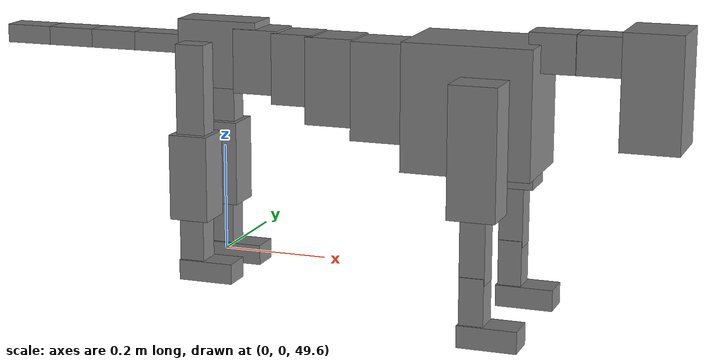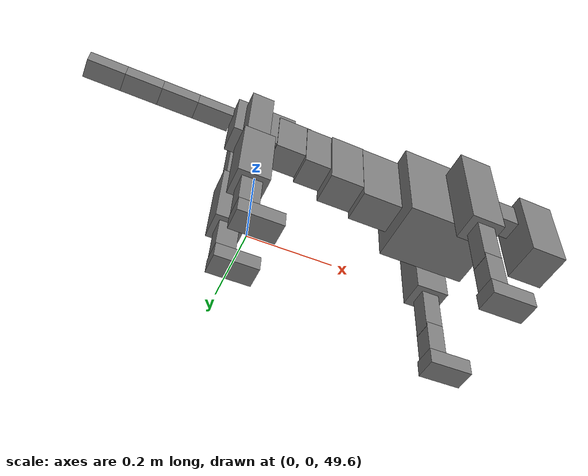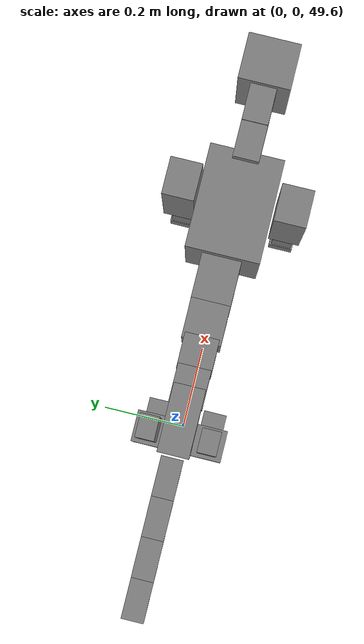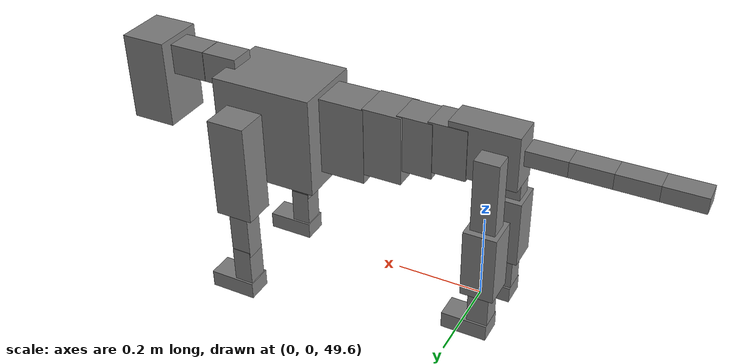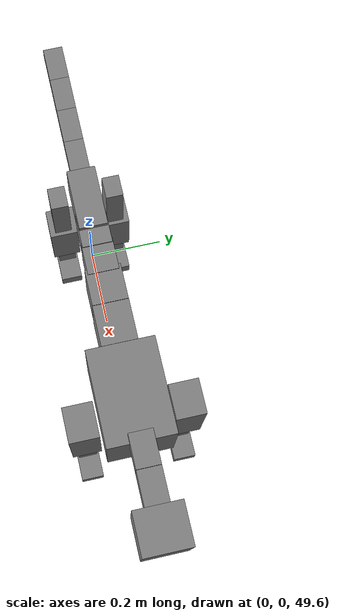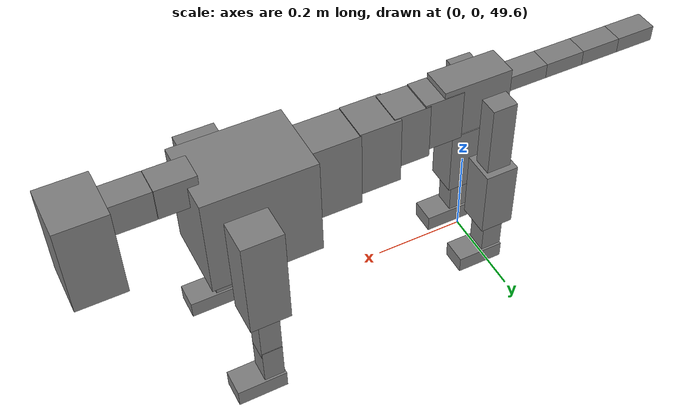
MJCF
<mujoco model="dog">

    <default>
        <joint armature="0.02" stiffness="1" damping="0.2" limited="true"/>
        <geom condim="3" friction="1 0.05 0.05" margin="0.01"/>
        <motor ctrllimited="true" ctrlrange="-1.0 1.0" forcelimited="true" gear="50"/>
    </default>

    <compiler inertiafromgeom="true" angle="radian"/>

    <option timestep="0.016" iterations="50" tolerance="1e-10" solver="Newton" jacobian="dense" cone="pyramidal"/>

    <size nconmax="20000" njmax="60000" nstack="5000000"/>
    <visual>
        <map force="0.1" zfar="30"/>
        <rgba haze="0.15 0.25 0.35 1"/>
        <quality shadowsize="2048"/>
        <global offwidth="800" offheight="800"/>
    </visual>

    <asset>
        <texture type="skybox" builtin="gradient" rgb1="0.3 0.5 0.7" rgb2="0 0 0" width="512" height="512"/>
        <texture name="texplane" type="2d" builtin="checker" rgb1=".2 .3 .4" rgb2=".1 0.15 0.2" width="512" height="512"
                 mark="cross" markrgb=".8 .8 .8"/>
        <texture name="texgeom" type="cube" builtin="flat" mark="cross" width="127" height="1278" rgb1="0.8 0.6 0.4"
                 rgb2="0.8 0.6 0.4" markrgb="1 1 1" random="0.01"/>

        <material name="matplane" reflectance="0.3" texture="texplane" texrepeat="1 1" texuniform="true"/>
        <material name="matgeom" texture="texgeom" texuniform="true" rgba="0.8 0.6 .4 1"/>
    </asset>

    <worldbody>
        <geom name="floor" pos="0 0 0" size="0 0 .25" type="plane" material="matplane" condim="3"/>

        <light directional="false" diffuse=".2 .2 .2" specular="0 0 0" pos="0 0 5" dir="0 0 -1" castshadow="false"/>
        <light mode="targetbodycom" target="torso" directional="false" diffuse=".8 .8 .8" specular="0.3 0.3 0.3"
               pos="0 0 4.0" dir="0 0 -1"/>

        <body name="root" pos="0 0 50">
            <freejoint name="root_1"/>
            <geom type="box" pos="0 0 -0.02" size="0.0774  0.0358  0.063" density="2030"/>

            <body name="spine1" pos="0.054 0 0">
                <joint name="spine1_y" axis="0 1 0" range="0 0.7" limited="true"/>
                <geom type="box" pos="0.02375 0 -0.03" size="0.04375  0.0375  0.05985" density="2030"/>

                <body name="spine2" pos="0.0612 0 0">
                    <joint name="spine2_y" axis="0 1 0" range="-0.15 0.15" limited="true"/>
                    <geom type="box" pos="0.03555  0  -0.04" size="0.04055  0.039  0.06615" density="2030"/>

                    <body name="spine3" pos="0.0730 0 0">
                        <joint name="spine3_y" axis="0 1 0" range="-0.15 0.15" limited="true"/>
                        <geom type="box" pos="0.03555  0  -0.057" size="0.04555  0.0445  0.081" density="2030"/>

                        <body name="spine4" pos="0.0780 0 0">
                            <joint name="spine4_y" axis="0 1 0" range="-0.15 0.15" limited="true"/>
                            <geom type="box" pos="0.05265  0  -0.07" size="0.05265  0.045  0.09135" density="2030"/>

                            <body name="torso" pos="0.1082 0 0">
                                <joint name="torso_y" axis="0 1 0" range="-0.15 0.15" limited="true"/>
                                <geom type="box" pos="0.11925  0  -0.085" size="0.11925  0.085  0.11745"
                                      density="2030"/>

                                <body name="neck1" pos="0.2160  0   0.0180">
                                    <joint name="neck1_y" axis="0 1 0" range="-1.2  -1" limited="true"/>
                                    <geom type="box" pos="0.0423  0  0" size="0.0423  0.03  0.036" density="2325"/>

                                    <body name="neck2" pos="0.0853  0  0">
                                        <joint name="neck2_y" axis="0 1 0" range="0.1  0" limited="true"/>
                                        <geom type="box" pos="0.0423  0  0" size="0.0423  0.03  0.036" density="2325"/>

                                        <body name="head" pos="0.0853  0  0">
                                            <joint name="head_y" axis="0 1 0" range="-0.3  -0.2" limited="true"/>
                                            <geom type="box" pos="0.0531  0  -0.055" size="0.0531  0.06  0.1044"
                                                  density="4030"/>

                                        </body>
                                    </body>
                                </body>

                                <body name="front_shoulder" pos="0.156  0   -0.0480">
                                    <joint name="front_shoulder_y" axis="0 1 0" range="-1 1.5" limited="true"/>
                                    <geom type="box" pos="0 0.13 -0.0927" size="0.0440  0.0376  0.1193" density="1158"/>
                                    <geom type="box" pos="0 -0.13 -0.0927" size="0.0440  0.0376  0.1193"
                                          density="1158"/>

                                    <body name="front_elbow" pos="0  0  -0.1854">
                                        <joint name="front_elbow_y" axis="0 1 0" range="-2 0" limited="true"/>
                                        <geom type="box" pos="0 0.13 -0.0715" size="0.0231  0.0236  0.0715"
                                              density="1081"/>
                                        <geom type="box" pos="0 -0.13 -0.0715" size="0.0231  0.0236  0.0715"
                                              density="1081"/>

                                        <body name="front_wrist" pos="0  0  -0.1430">
                                            <joint name="front_wrist_y" axis="0 1 0" range="-0.2 0" limited="true"/>
                                            <geom type="box" pos="0 0.13 -0.0446" size="0.0225  0.0250  0.0577"
                                                  density="1664"/>
                                            <geom type="box" pos="0 -0.13 -0.0446" size="0.0225  0.0250  0.0577"
                                                  density="1664"/>

                                            <body name="front_finger_end" pos="0  0  -0.0891">
                                                <joint name="front_finger_y" axis="0 1 0" range="-0.4 1"
                                                       limited="true"/>
                                                <geom type="box" pos="0.0299  0.13  -0.0054"
                                                      size="0.0549  0.0299  0.0204" density="1515"/>
                                                <geom type="box" pos="0.0299  -0.13  -0.0054"
                                                      size="0.0549  0.0299  0.0204" density="1515"/>

                                            </body>

                                        </body>
                                    </body>
                                </body>

                            </body>
                        </body>
                    </body>
                </body>
            </body>

            <body name="back_hip" pos="-0.03 0 -0.018">
                <joint name="back_hip_y" axis="0 1 0" range="-1.5 0.3" limited="true"/>
                <geom type="box" pos="0 0.07 -0.0805" size="0.0277  0.0218  0.1033" density="1154"/>
                <geom type="box" pos="0 -0.07 -0.0805" size="0.0277  0.0218  0.1033" density="1154"/>

                <body name="back_knee" pos="0  0  -0.1609">
                    <joint name="back_knee_y" axis="0 1 0" range="0 2.8" limited="true"/>
                    <geom type="box" pos="0 0.07 -0.0647" size="0.0372  0.0366  0.0803" density="1227"/>
                    <geom type="box" pos="0 -0.07 -0.0647" size="0.0372  0.0366  0.0803" density="1227"/>

                    <body name="back_ankle" pos="0  0  -0.1295">
                        <joint name="back_ankle_y" axis="0 1 0" range="-2.2 0" limited="true"/>
                        <geom type="box" pos="0 0.07 -0.0548" size="0.0236  0.0236  0.0661" density="1284"/>
                        <geom type="box" pos="0 -0.07 -0.0548" size="0.0236  0.0236  0.0661" density="1284"/>

                        <body name="back_toe_end" pos="0  0  -0.1096">
                            <joint name="back_toe_y" axis="0 1 0" range="-0.4 1" limited="true"/>
                            <geom type="box" pos="0.0286  0.07  -0.0041" size="0.0524  0.0286  0.0191" density="1515"/>
                            <geom type="box" pos="0.0286  -0.07  -0.0041" size="0.0524  0.0286  0.0191" density="1515"/>

                        </body>
                    </body>
                </body>
            </body>

            <body name="tail1" pos="-0.074 0 -0.006">
                <joint name="tail1_y" axis="0 1 0" range="-0.2 0.2" limited="true"/>
                <geom type="box" pos="-0.0536  0  0" size="0.045  0.025  0.0175" density="1587"/>

                <body name="tail2" pos="-0.09 0 0">
                    <joint name="tail2_y" axis="0 1 0" range="-0.2 0.2" limited="true"/>
                    <geom type="box" pos="-0.0536  0  0" size="0.045  0.025  0.0175" density="1587"/>

                    <body name="tail3" pos="-0.09 0 0">
                        <joint name="tail3_y" axis="0 1 0" range="-0.2 0.2" limited="true"/>
                        <geom type="box" pos="-0.0536  0  0" size="0.045  0.025  0.0175" density="1587"/>

                        <body name="tail4" pos="-0.09 0 0">
                            <joint name="tail4_y" axis="0 1 0" range="-0.2 0.2" limited="true"/>
                            <geom type="box" pos="-0.0536  0  0" size="0.045  0.025  0.0175" density="1587"/>

                        </body>
                    </body>
                </body>
            </body>
        </body>
    </worldbody>

    <actuator>
        <motor joint="spine1_y" forcerange="-150 150     "/>
        <motor joint="spine2_y" forcerange="-150 150     "/>
        <motor joint="spine3_y" forcerange="-150 150     "/>
        <motor joint="spine4_y" forcerange="-150 150     "/>
        <motor joint="torso_y" forcerange="-150 150     "/>
        <motor joint="neck1_y" forcerange="-100 100       "/>
        <motor joint="neck2_y" forcerange="-100 100       "/>
        <motor joint="head_y" forcerange="-150 150       "/>
        <motor joint="front_shoulder_y" forcerange="-189.92 160.69"/>
        <motor joint="front_elbow_y" forcerange="-149.56 122.38"/>
        <motor joint="front_wrist_y" forcerange="-110.28 90.02"/>
        <motor joint="front_finger_y" forcerange="-24.74 94.88"/>
        <motor joint="back_hip_y" forcerange="-231.43 258.76"/>
        <motor joint="back_knee_y" forcerange="-381.96 351.04"/>
        <motor joint="back_angle_y" forcerange="-165.44 112.92"/>
        <motor joint="back_toe_y" forcerange="-98.17 50.39"/>
        <motor joint="tail1_y" forcerange="-50 50     "/>
        <motor joint="tail2_y" forcerange="-50 50     "/>
        <motor joint="tail3_y" forcerange="-50 50     "/>
        <motor joint="tail4_y" forcerange="-50 50     "/>
    </actuator>
</mujoco>
